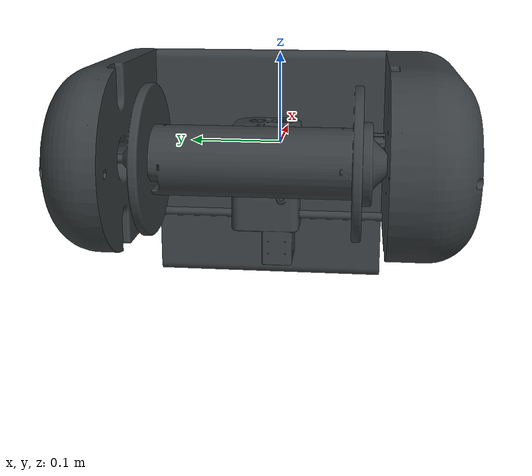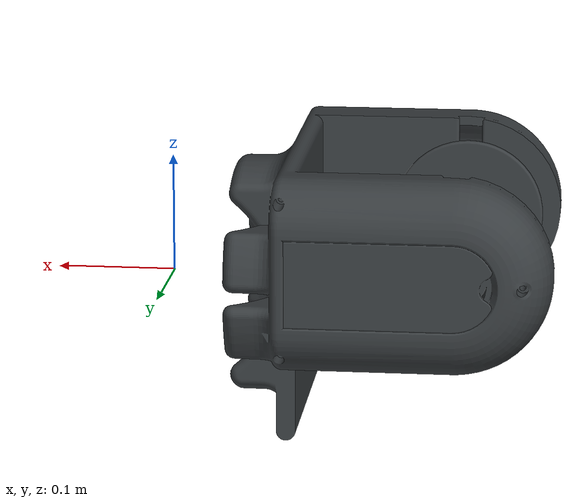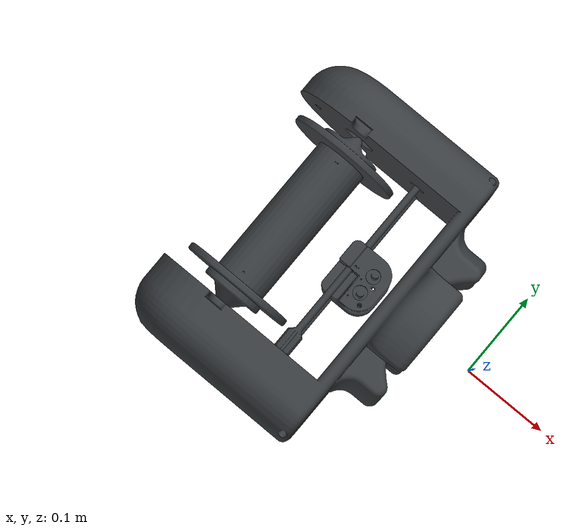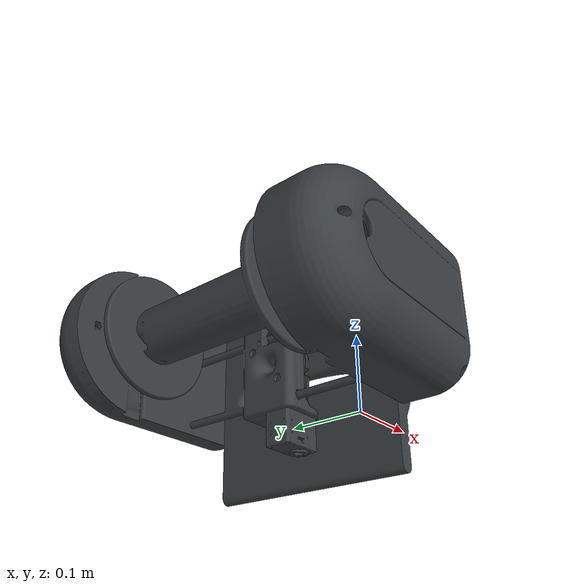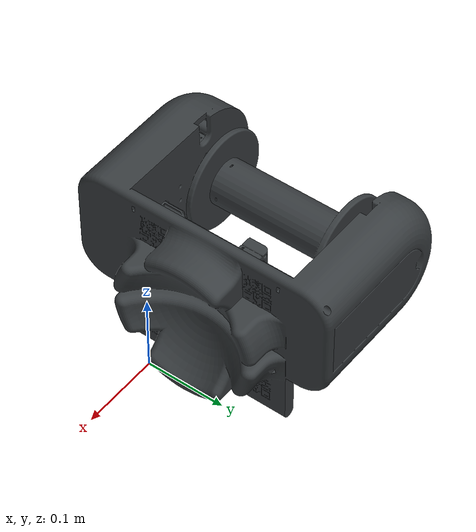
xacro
<?xml version="1.0" encoding="UTF-8" ?>
<robot name="bot_q_tms" xmlns:xacro="http://www.ros.org/wiki/xacro">

  <!-- Add Common Xacro: transmissions, colors -->
  <xacro:include filename="$(find bot_q_tms_description)/urdf/values.urdf.xacro" />
  <xacro:include filename="$(find bot_q_tms_description)/urdf/materials.urdf.xacro" />
  <xacro:include filename="$(find bot_q_tms_description)/urdf/transmission.urdf.xacro" />
  <xacro:include filename="$(find bot_q_tms_description)/urdf/controllers.urdf.xacro" />

  <!-- Add URDF: links, joints -->
  <xacro:include filename="$(find bot_q_tms_description)/urdf/base/base.urdf.xacro" />
  <xacro:include filename="$(find bot_q_tms_description)/urdf/extruder/extruder.urdf.xacro" />
  <xacro:include filename="$(find bot_q_tms_description)/urdf/carrier/carrier.urdf.xacro" />

  <!-- Add URDF: gazebo -->
  <xacro:include filename="$(find bot_q_tms_description)/urdf/gazebo.urdf.xacro" />

  <!-- Add variables -->
  <xacro:arg name="robot_name"      default="bot_q_tms" />
  <xacro:arg name="enable_gz"       default="False" />
  <xacro:arg name="enable_carrier"  default="False" />

  <!-- Connect the Links and Joints -->
  <link name="base_footprint" />

  <xacro:base      prefix="base"      parent="base_footprint">
    <xacro:if value="${$(arg enable_carrier)}">
      <origin xyz="0.0 0.0 ${0.1058+0.008+0.1742}" rpy="0 0 0"/>
    </xacro:if>
    <xacro:unless value="${$(arg enable_carrier)}">
      <origin xyz="0.0 0.0 ${0.1058+0.008}" rpy="0 0 0"/>
    </xacro:unless>
  </xacro:base>

  <xacro:extruder  prefix="extruder"  parent="base_body_link" />

  <xacro:if value="${$(arg enable_carrier)}">
    <xacro:carrier prefix="carrier"  parent="base_body_link" />
  </xacro:if>

  <!-- Add Dynamixel: plugins -->
  <xacro:controllers name="joints_control" enable_gz="$(arg enable_gz)" robot_name="$(arg robot_name)" />

  <!-- Add Gazebo: plugins -->
  <xacro:if value="${$(arg enable_gz)}">
    <xacro:gazebo_sensors robot_name="$(arg robot_name)"/>
  </xacro:if>

</robot>

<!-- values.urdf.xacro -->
<!-- Bot-Q TMS (Values) -->
<robot name="bot_q_tms_values" xmlns:xacro="http://ros.org/wiki/xacro">

  <xacro:property name="M_PI" value="3.14159265359" />

</robot>

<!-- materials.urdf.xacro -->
<!-- Bot-Q TMS (Materials) -->
<robot name="bot_q_tms_materials" xmlns:xacro="http://ros.org/wiki/xacro">

  <material name="black">
    <color rgba="0.0 0.0 0.0 1.0"/>
  </material>

  <material name="white">
    <color rgba="1.0 1.0 1.0 1.0"/>
  </material>

  <material name="red">
    <color rgba="0.8 0.0 0.0 1.0"/>
  </material>

  <material name="blue">
    <color rgba="0.0 0.0 0.8 1.0"/>
  </material>

  <material name="green">
    <color rgba="0.0 0.8 0.0 1.0"/>
  </material>

  <material name="grey">
    <color rgba="0.5 0.5 0.5 1.0"/>
  </material>

  <material name="body">
    <color rgba="0.2175 0.2355 0.246 1.0" />
  </material>

  <material name="tire">
    <color rgba="0.3 0.3 0.3 1.0" />
  </material>

</robot>

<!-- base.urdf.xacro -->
<robot name="base" xmlns:xacro="http://ros.org/wiki/xacro">
  <xacro:macro name="base" params="parent prefix *origin">

    <!-- Base -->
    <joint name="${prefix}_body_joint" type="fixed">
      <parent link="${parent}" />
      <child link="${prefix}_body_link" />
      <xacro:insert_block name="origin" />
    </joint>

    <link name="${prefix}_body_link">
      <visual>
        <origin xyz="0.0 0.0 0.0" rpy="0 0 ${M_PI/2}" />
        <geometry>
          <mesh filename="file://$(find bot_q_tms_description)/meshes/base/tms_body.stl" scale="0.001 0.001 0.001" />
        </geometry>
        <material name="body" />
      </visual>

      <collision>
        <origin xyz="0.0 0.0 0.0" rpy="0 0 ${M_PI/2}" />
        <geometry>
          <mesh filename="file://$(find bot_q_tms_description)/meshes/base/tms_body.stl" scale="0.001 0.001 0.001" />
        </geometry>
      </collision>

      <!-- TODO -->
      <inertial>
        <mass value="6.4" />
        <origin xyz="0 0 0" rpy="0 0 0" />
        <inertia ixx="2.1342e-02" ixy="0" ixz="0"
                 iyy="2.1342e-02" iyz="0"
                 izz="4.2667e-02" />
      </inertial>
    </link>

    <!-- Joint 1: Spool -->
    <joint name="${prefix}_spool_joint" type="continuous">
      <parent link="${prefix}_body_link" />
      <child link="${prefix}_spool_link" />
      <origin xyz="-0.246 -0.1156 0.0338" rpy="0 0 0" />
      <limit effort="10" velocity="1" />
      <axis xyz="0 1 0" />
    </joint>

    <link name="${prefix}_spool_link">
      <visual>
        <origin xyz="0 0 0" rpy="0 0 ${M_PI}" />
        <geometry>
          <mesh filename="file://$(find bot_q_tms_description)/meshes/base/tms_spool.stl" scale="0.001 0.001 0.001" />
        </geometry>
        <material name="body" />
      </visual>

      <collision>
        <origin xyz="0 0 0" rpy="0 0 ${M_PI}" />
        <geometry>
          <mesh filename="file://$(find bot_q_tms_description)/meshes/base/tms_spool.stl" scale="0.001 0.001 0.001" />
        </geometry>
      </collision>

      <inertial>
        <mass value="0.5" />
        <origin xyz="0 0 0" rpy="0 0 0" />
        <inertia ixx="${1/12*0.5*(3*0.05**2+0.1**2)}" ixy="0" ixz="0"
                 iyy="${1/12*0.5*(3*0.05**2+0.1**2)}" iyz="0"
                 izz="${1/2*0.5*0.05**2}" />
      </inertial>
    </link>

    <!-- Joint 2: Guider -->
    <joint name="${prefix}_guider_joint" type="continuous">
      <parent link="${prefix}_body_link" />
      <child link="${prefix}_guider_link" />
      <origin xyz="-0.166 -0.1156 0.035" rpy="0 0 0" />
      <limit effort="10" velocity="1" />
      <axis xyz="0 1 0" />
    </joint>

    <link name="${prefix}_guider_link">
      <visual>
        <origin xyz="0 0 0" rpy="0 0 ${M_PI}" />
        <geometry>
          <mesh filename="file://$(find bot_q_tms_description)/meshes/base/tms_guider.stl" scale="0.001 0.001 0.001" />
        </geometry>
        <material name="body" />
      </visual>

      <collision>
        <origin xyz="0 0 0" rpy="0 0 ${M_PI}" />
        <geometry>
          <mesh filename="file://$(find bot_q_tms_description)/meshes/base/tms_guider.stl" scale="0.001 0.001 0.001" />
        </geometry>
      </collision>

      <inertial>
        <mass value="0.5" />
        <origin xyz="0 0 0" rpy="0 0 0" />
        <inertia ixx="${1/12*0.5*(3*0.05**2+0.1**2)}" ixy="0" ixz="0"
                 iyy="${1/12*0.5*(3*0.05**2+0.1**2)}" iyz="0"
                 izz="${1/2*0.5*0.05**2}" />
      </inertial>
    </link>

  </xacro:macro>
</robot>

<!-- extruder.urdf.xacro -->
<robot name="extruder" xmlns:xacro="http://ros.org/wiki/xacro">
  <xacro:macro name="extruder" params="parent prefix">

    <!-- extruder -->
    <joint name="${prefix}_body_joint" type="fixed">
      <parent link="${parent}" />
      <child link="${prefix}_body_link" />
      <origin xyz="-0.166 -${0.1156-0.1136} 0.035" rpy="0 -${M_PI/2} 0" />
    </joint>

    <link name="${prefix}_body_link">
      <visual>
        <origin xyz="0.0 0.0 0.0" rpy="0 0 ${M_PI/2}" />
        <geometry>
          <mesh filename="file://$(find bot_q_tms_description)/meshes/extruder/extruder_body.stl" scale="0.001 0.001 0.001" />
        </geometry>
        <material name="body" />
      </visual>

      <!-- TODO -->
      <collision>
        <origin xyz="0.0 0.0 0.0" rpy="0 0 0" />
        <geometry>
          <mesh filename="file://$(find bot_q_tms_description)/meshes/extruder/extruder_body.stl" scale="0.001 0.001 0.001" />
        </geometry>
      </collision>

      <!-- TODO -->
      <inertial>
        <mass value="6.4" />
        <origin xyz="0.0 0.0 0.0" rpy="0 0 0" />
        <inertia ixx="2.1342e-02" ixy="0" ixz="0"
                 iyy="2.1342e-02" iyz="0"
                 izz="4.2667e-02" />
      </inertial>
    </link>

    <!-- Joint 3: Extruder Gear -->
    <joint name="${prefix}_gear_joint" type="continuous">
      <parent link="${prefix}_body_link" />
      <child link="${prefix}_gear_link" />
      <origin xyz="-0.082 -0.0108 -0.02525" rpy="0 0 0" />
      <limit effort="10" velocity="1" />
      <axis xyz="1 0 0" />
    </joint>

    <link name="${prefix}_gear_link">
      <visual>
        <origin xyz="0.0 0.0 0.0" rpy="0 0 ${M_PI/2}" />
        <geometry>
          <mesh filename="file://$(find bot_q_tms_description)/meshes/extruder/extruder_gear.stl" scale="0.001 0.001 0.001" />
        </geometry>
        <material name="body" />
      </visual>

      <!-- TODO -->
      <collision>
        <origin xyz="0.0 0.0 0.0" rpy="0 0 0" />
        <geometry>
          <mesh filename="file://$(find bot_q_tms_description)/meshes/extruder/extruder_gear.stl" scale="0.001 0.001 0.001" />
        </geometry>
      </collision>

      <!-- TODO -->
      <inertial>
        <mass value="0.5" />
        <origin xyz="0 0 0" rpy="0 0 0" />
        <inertia ixx="${1/12*0.5*(3*0.05**2+0.1**2)}" ixy="0" ixz="0"
                 iyy="${1/12*0.5*(3*0.05**2+0.1**2)}" iyz="0"
                 izz="${1/2*0.5*0.05**2}" />
      </inertial>
    </link>

    <!-- Joint 3-1: Extruder Gear Sub -->
    <joint name="${prefix}_gear_sub_joint" type="continuous">
      <parent link="${prefix}_body_link" />
      <child link="${prefix}_gear_sub_link" />
      <origin xyz="-0.084 0.01394608 -0.02525" rpy="0 0 0" />
      <mimic joint="${prefix}_gear_joint" />
      <limit effort="10" velocity="1" />
      <axis xyz="-1 0 0" />
    </joint>

    <link name="${prefix}_gear_sub_link">
      <visual>
        <origin xyz="0 0 0" rpy="0 0 ${M_PI/2}" />
        <geometry>
          <mesh filename="file://$(find bot_q_tms_description)/meshes/extruder/extruder_gear_sub.stl" scale="0.001 0.001 0.001" />
        </geometry>
        <material name="body" />
      </visual>

      <!-- TODO -->
      <collision>
        <origin xyz="0.0 0.0 0.0" rpy="0 0 0" />
        <geometry>
          <mesh filename="file://$(find bot_q_tms_description)/meshes/extruder/extruder_gear_sub.stl" scale="0.001 0.001 0.001" />
        </geometry>
      </collision>

      <!-- TODO -->
      <inertial>
        <mass value="0.5" />
        <origin xyz="0 0 0" rpy="0 0 0" />
        <inertia ixx="${1/12*0.5*(3*0.05**2+0.1**2)}" ixy="0" ixz="0"
                 iyy="${1/12*0.5*(3*0.05**2+0.1**2)}" iyz="0"
                 izz="${1/2*0.5*0.05**2}" />
      </inertial>
    </link>

  </xacro:macro>
</robot>
